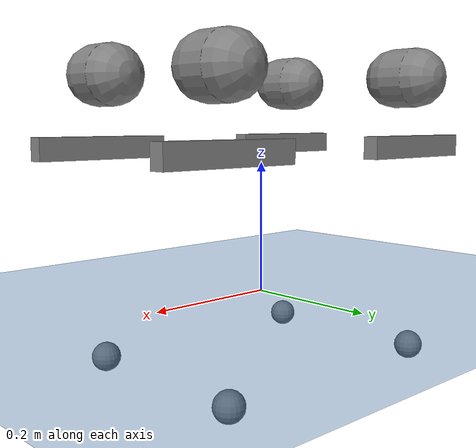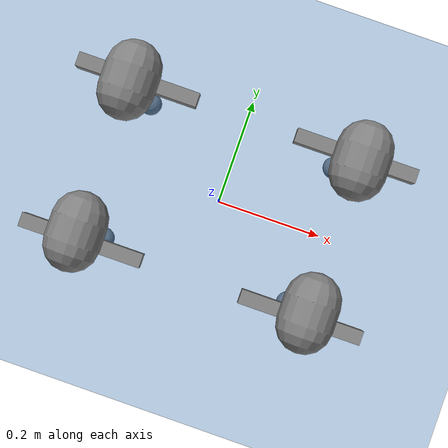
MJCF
<mujoco model="MuJoCo Model">
  <compiler angle="radian"/>

  <option gravity="0 0 -9.81" integrator="implicitfast">
    <flag multiccd="disable"/>
  </option>

  <worldbody>
    <geom name="ground_plane_0" size="5 5 5" type="plane" contype="2" conaffinity="2147483645" friction="2 0.005 0.0001" solref="0.02" rgba="0 0.3 0.6 1"/>
    <body name="body_0" pos="0 0 0.33">
      <inertial pos="0 0 0" quat="-0.000543471 0.713435 -0.00173769 0.700719" mass="7.279" diaginertia="0.107027 0.0980771 0.0244531"/>
      <joint name="joint_1" type="free"/>
      <geom name="shape_1_1" size="0.001" contype="4" conaffinity="2147483643" friction="2 0.005 0.0001" solref="0.02"/>
      <body name="body_1" pos="0.1934 0.0465 0">
        <inertial pos="0 0 0" quat="0.497014 0.499245 0.505462 0.498237" mass="0.767" diaginertia="0.000884029 0.000596003 0.000479967"/>
        <joint name="FL_hip" pos="0 0 0" axis="1 0 0" solreflimit="-10000 -100" limited="true" range="-1.0472 1.0472" actuatorfrclimited="true" actuatorfrcrange="-23.7 23.7"/>
        <geom name="shape_2_2" size="0.046 0.02" pos="0 0.08 0" quat="0.707107 -0.707107 0 0" type="capsule" contype="4" conaffinity="2147483643" friction="2 0.005 0.0001" solref="0.02"/>
        <body name="body_2" pos="0 0.0955 0">
          <inertial pos="0 0 0" quat="0.829533 0.0847635 -0.0200632 0.551622" mass="1.241" diaginertia="0.00594973 0.00584149 0.000878787"/>
          <joint name="FL_thigh" pos="0 0 0" axis="0 1 0" solreflimit="-10000 -100" limited="true" range="-1.5708 3.13159" actuatorfrclimited="true" actuatorfrcrange="-23.7 23.7"/>
          <geom name="shape_3_3" size="0.1065 0.01225 0.017" pos="0 0 -0.1065" type="box" contype="4" conaffinity="2147483643" friction="2 0.005 0.0001" solref="0.02"/>
          <body name="FL_foot" pos="0 0 -0.213">
            <inertial pos="0 0 0" mass="0.194" diaginertia="0.0018236 0.0032398 0.0018236"/>
            <joint name="FL_calf" pos="0 0 0" axis="0 1 0" solreflimit="-10000 -100" limited="true" range="-2.7227 -0.83776" actuatorfrclimited="true" actuatorfrcrange="-45.43 45.43"/>
            <geom name="shape_4_4" size="0.022" pos="0 0 -0.213" contype="4" conaffinity="2147483643" friction="2 0.005 0.0001" solref="0.02"/>
          </body>
        </body>
      </body>
      <body name="body_4" pos="0.1934 -0.0465 0">
        <inertial pos="0 0 0" quat="0.498237 0.505462 0.499245 0.497014" mass="0.767" diaginertia="0.000884029 0.000596003 0.000479967"/>
        <joint name="FR_hip" pos="0 0 0" axis="1 0 0" solreflimit="-10000 -100" limited="true" range="-1.0472 1.0472" actuatorfrclimited="true" actuatorfrcrange="-23.7 23.7"/>
        <geom name="shape_5_5" size="0.046 0.02" pos="0 -0.08 0" quat="0.707107 -0.707107 0 0" type="capsule" contype="4" conaffinity="2147483643" friction="2 0.005 0.0001" solref="0.02"/>
        <body name="body_5" pos="0 -0.0955 0">
          <inertial pos="0 0 0" quat="0.551622 -0.0200632 0.0847635 0.829533" mass="1.241" diaginertia="0.00594973 0.00584149 0.000878787"/>
          <joint name="FR_thigh" pos="0 0 0" axis="0 1 0" solreflimit="-10000 -100" limited="true" range="-1.5708 3.13159" actuatorfrclimited="true" actuatorfrcrange="-23.7 23.7"/>
          <geom name="shape_6_6" size="0.1065 0.01225 0.017" pos="0 0 -0.1065" type="box" contype="4" conaffinity="2147483643" friction="2 0.005 0.0001" solref="0.02"/>
          <body name="FR_foot" pos="0 0 -0.213">
            <inertial pos="0 0 0" mass="0.194" diaginertia="0.0018236 0.0032398 0.0018236"/>
            <joint name="FR_calf" pos="0 0 0" axis="0 1 0" solreflimit="-10000 -100" limited="true" range="-2.7227 -0.83776" actuatorfrclimited="true" actuatorfrcrange="-45.43 45.43"/>
            <geom name="shape_7_7" size="0.022" pos="0 0 -0.213" contype="4" conaffinity="2147483643" friction="2 0.005 0.0001" solref="0.02"/>
          </body>
        </body>
      </body>
      <body name="body_7" pos="-0.1934 0.0465 0">
        <inertial pos="0 0 0" quat="0.505462 0.498237 0.497014 0.499245" mass="0.767" diaginertia="0.000884029 0.000596003 0.000479967"/>
        <joint name="RL_hip" pos="0 0 0" axis="1 0 0" solreflimit="-10000 -100" limited="true" range="-1.0472 1.0472" actuatorfrclimited="true" actuatorfrcrange="-23.7 23.7"/>
        <geom name="shape_8_8" size="0.046 0.02" pos="0 0.08 0" quat="0.707107 -0.707107 0 0" type="capsule" contype="4" conaffinity="2147483643" friction="2 0.005 0.0001" solref="0.02"/>
        <body name="body_8" pos="0 0.0955 0">
          <inertial pos="0 0 0" quat="0.829533 0.0847635 -0.0200632 0.551622" mass="1.241" diaginertia="0.00594973 0.00584149 0.000878787"/>
          <joint name="RL_thigh" pos="0 0 0" axis="0 1 0" solreflimit="-10000 -100" limited="true" range="-0.5236 3.13159" actuatorfrclimited="true" actuatorfrcrange="-23.7 23.7"/>
          <geom name="shape_9_9" size="0.1065 0.01225 0.017" pos="0 0 -0.1065" type="box" contype="4" conaffinity="2147483643" friction="2 0.005 0.0001" solref="0.02"/>
          <body name="RL_foot" pos="0 0 -0.213">
            <inertial pos="0 0 0" mass="0.194" diaginertia="0.0018236 0.0032398 0.0018236"/>
            <joint name="RL_calf" pos="0 0 0" axis="0 1 0" solreflimit="-10000 -100" limited="true" range="-2.7227 -0.83776" actuatorfrclimited="true" actuatorfrcrange="-45.43 45.43"/>
            <geom name="shape_10_10" size="0.022" pos="0 0 -0.213" contype="4" conaffinity="2147483643" friction="2 0.005 0.0001" solref="0.02"/>
          </body>
        </body>
      </body>
      <body name="body_10" pos="-0.1934 -0.0465 0">
        <inertial pos="0 0 0" quat="0.499245 0.497014 0.498237 0.505462" mass="0.767" diaginertia="0.000884029 0.000596003 0.000479967"/>
        <joint name="RR_hip" pos="0 0 0" axis="1 0 0" solreflimit="-10000 -100" limited="true" range="-1.0472 1.0472" actuatorfrclimited="true" actuatorfrcrange="-23.7 23.7"/>
        <geom name="shape_11_11" size="0.046 0.02" pos="0 -0.08 0" quat="0.707107 -0.707107 0 0" type="capsule" contype="4" conaffinity="2147483643" friction="2 0.005 0.0001" solref="0.02"/>
        <body name="body_11" pos="0 -0.0955 0">
          <inertial pos="0 0 0" quat="0.551622 -0.0200632 0.0847635 0.829533" mass="1.241" diaginertia="0.00594973 0.00584149 0.000878787"/>
          <joint name="RR_thigh" pos="0 0 0" axis="0 1 0" solreflimit="-10000 -100" limited="true" range="-0.5236 3.13159" actuatorfrclimited="true" actuatorfrcrange="-23.7 23.7"/>
          <geom name="shape_12_12" size="0.1065 0.01225 0.017" pos="0 0 -0.1065" type="box" contype="4" conaffinity="2147483643" friction="2 0.005 0.0001" solref="0.02"/>
          <body name="RR_foot" pos="0 0 -0.213">
            <inertial pos="0 0 0" mass="0.194" diaginertia="0.0018236 0.0032398 0.0018236"/>
            <joint name="RR_calf" pos="0 0 0" axis="0 1 0" solreflimit="-10000 -100" limited="true" range="-2.7227 -0.83776" actuatorfrclimited="true" actuatorfrcrange="-45.43 45.43"/>
            <geom name="shape_13_13" size="0.022" pos="0 0 -0.213" contype="4" conaffinity="2147483643" friction="2 0.005 0.0001" solref="0.02"/>
          </body>
        </body>
      </body>
    </body>
  </worldbody>

  <contact>
    <exclude body1="body_0" body2="body_1"/>
    <exclude body1="body_0" body2="body_2"/>
    <exclude body1="body_0" body2="FL_foot"/>
    <exclude body1="body_0" body2="body_4"/>
    <exclude body1="body_0" body2="body_5"/>
    <exclude body1="body_0" body2="FR_foot"/>
    <exclude body1="body_0" body2="body_7"/>
    <exclude body1="body_0" body2="body_8"/>
    <exclude body1="body_0" body2="RL_foot"/>
    <exclude body1="body_0" body2="body_10"/>
    <exclude body1="body_0" body2="body_11"/>
    <exclude body1="body_0" body2="RR_foot"/>
    <exclude body1="body_1" body2="body_2"/>
    <exclude body1="body_1" body2="FL_foot"/>
    <exclude body1="body_1" body2="body_4"/>
    <exclude body1="body_1" body2="body_5"/>
    <exclude body1="body_1" body2="FR_foot"/>
    <exclude body1="body_1" body2="body_7"/>
    <exclude body1="body_1" body2="body_8"/>
    <exclude body1="body_1" body2="RL_foot"/>
    <exclude body1="body_1" body2="body_10"/>
    <exclude body1="body_1" body2="body_11"/>
    <exclude body1="body_1" body2="RR_foot"/>
    <exclude body1="body_2" body2="FL_foot"/>
    <exclude body1="body_2" body2="body_4"/>
    <exclude body1="body_2" body2="body_5"/>
    <exclude body1="body_2" body2="FR_foot"/>
    <exclude body1="body_2" body2="body_7"/>
    <exclude body1="body_2" body2="body_8"/>
    <exclude body1="body_2" body2="RL_foot"/>
    <exclude body1="body_2" body2="body_10"/>
    <exclude body1="body_2" body2="body_11"/>
    <exclude body1="body_2" body2="RR_foot"/>
    <exclude body1="FL_foot" body2="body_4"/>
    <exclude body1="FL_foot" body2="body_5"/>
    <exclude body1="FL_foot" body2="FR_foot"/>
    <exclude body1="FL_foot" body2="body_7"/>
    <exclude body1="FL_foot" body2="body_8"/>
    <exclude body1="FL_foot" body2="RL_foot"/>
    <exclude body1="FL_foot" body2="body_10"/>
    <exclude body1="FL_foot" body2="body_11"/>
    <exclude body1="FL_foot" body2="RR_foot"/>
    <exclude body1="body_4" body2="body_5"/>
    <exclude body1="body_4" body2="FR_foot"/>
    <exclude body1="body_4" body2="body_7"/>
    <exclude body1="body_4" body2="body_8"/>
    <exclude body1="body_4" body2="RL_foot"/>
    <exclude body1="body_4" body2="body_10"/>
    <exclude body1="body_4" body2="body_11"/>
    <exclude body1="body_4" body2="RR_foot"/>
    <exclude body1="body_5" body2="FR_foot"/>
    <exclude body1="body_5" body2="body_7"/>
    <exclude body1="body_5" body2="body_8"/>
    <exclude body1="body_5" body2="RL_foot"/>
    <exclude body1="body_5" body2="body_10"/>
    <exclude body1="body_5" body2="body_11"/>
    <exclude body1="body_5" body2="RR_foot"/>
    <exclude body1="FR_foot" body2="body_7"/>
    <exclude body1="FR_foot" body2="body_8"/>
    <exclude body1="FR_foot" body2="RL_foot"/>
    <exclude body1="FR_foot" body2="body_10"/>
    <exclude body1="FR_foot" body2="body_11"/>
    <exclude body1="FR_foot" body2="RR_foot"/>
    <exclude body1="body_7" body2="body_8"/>
    <exclude body1="body_7" body2="RL_foot"/>
    <exclude body1="body_7" body2="body_10"/>
    <exclude body1="body_7" body2="body_11"/>
    <exclude body1="body_7" body2="RR_foot"/>
    <exclude body1="body_8" body2="RL_foot"/>
    <exclude body1="body_8" body2="body_10"/>
    <exclude body1="body_8" body2="body_11"/>
    <exclude body1="body_8" body2="RR_foot"/>
    <exclude body1="RL_foot" body2="body_10"/>
    <exclude body1="RL_foot" body2="body_11"/>
    <exclude body1="RL_foot" body2="RR_foot"/>
    <exclude body1="body_10" body2="body_11"/>
    <exclude body1="body_10" body2="RR_foot"/>
    <exclude body1="body_11" body2="RR_foot"/>
  </contact>

  <actuator>
    <general name="FL_hip_pos" joint="FL_hip" biastype="affine" gainprm="250" biasprm="0 -250"/>
    <general name="FL_hip_vel" joint="FL_hip" biastype="affine" gainprm="6" biasprm="0 0 -6"/>
    <general name="FL_thigh_pos" joint="FL_thigh" biastype="affine" gainprm="250" biasprm="0 -250"/>
    <general name="FL_thigh_vel" joint="FL_thigh" biastype="affine" gainprm="6" biasprm="0 0 -6"/>
    <general name="FL_calf_pos" joint="FL_calf" biastype="affine" gainprm="250" biasprm="0 -250"/>
    <general name="FL_calf_vel" joint="FL_calf" biastype="affine" gainprm="6" biasprm="0 0 -6"/>
    <general name="FR_hip_pos" joint="FR_hip" biastype="affine" gainprm="250" biasprm="0 -250"/>
    <general name="FR_hip_vel" joint="FR_hip" biastype="affine" gainprm="6" biasprm="0 0 -6"/>
    <general name="FR_thigh_pos" joint="FR_thigh" biastype="affine" gainprm="250" biasprm="0 -250"/>
    <general name="FR_thigh_vel" joint="FR_thigh" biastype="affine" gainprm="6" biasprm="0 0 -6"/>
    <general name="FR_calf_pos" joint="FR_calf" biastype="affine" gainprm="250" biasprm="0 -250"/>
    <general name="FR_calf_vel" joint="FR_calf" biastype="affine" gainprm="6" biasprm="0 0 -6"/>
    <general name="RL_hip_pos" joint="RL_hip" biastype="affine" gainprm="250" biasprm="0 -250"/>
    <general name="RL_hip_vel" joint="RL_hip" biastype="affine" gainprm="6" biasprm="0 0 -6"/>
    <general name="RL_thigh_pos" joint="RL_thigh" biastype="affine" gainprm="250" biasprm="0 -250"/>
    <general name="RL_thigh_vel" joint="RL_thigh" biastype="affine" gainprm="6" biasprm="0 0 -6"/>
    <general name="RL_calf_pos" joint="RL_calf" biastype="affine" gainprm="250" biasprm="0 -250"/>
    <general name="RL_calf_vel" joint="RL_calf" biastype="affine" gainprm="6" biasprm="0 0 -6"/>
    <general name="RR_hip_pos" joint="RR_hip" biastype="affine" gainprm="250" biasprm="0 -250"/>
    <general name="RR_hip_vel" joint="RR_hip" biastype="affine" gainprm="6" biasprm="0 0 -6"/>
    <general name="RR_thigh_pos" joint="RR_thigh" biastype="affine" gainprm="250" biasprm="0 -250"/>
    <general name="RR_thigh_vel" joint="RR_thigh" biastype="affine" gainprm="6" biasprm="0 0 -6"/>
    <general name="RR_calf_pos" joint="RR_calf" biastype="affine" gainprm="250" biasprm="0 -250"/>
    <general name="RR_calf_vel" joint="RR_calf" biastype="affine" gainprm="6" biasprm="0 0 -6"/>
  </actuator>
</mujoco>
